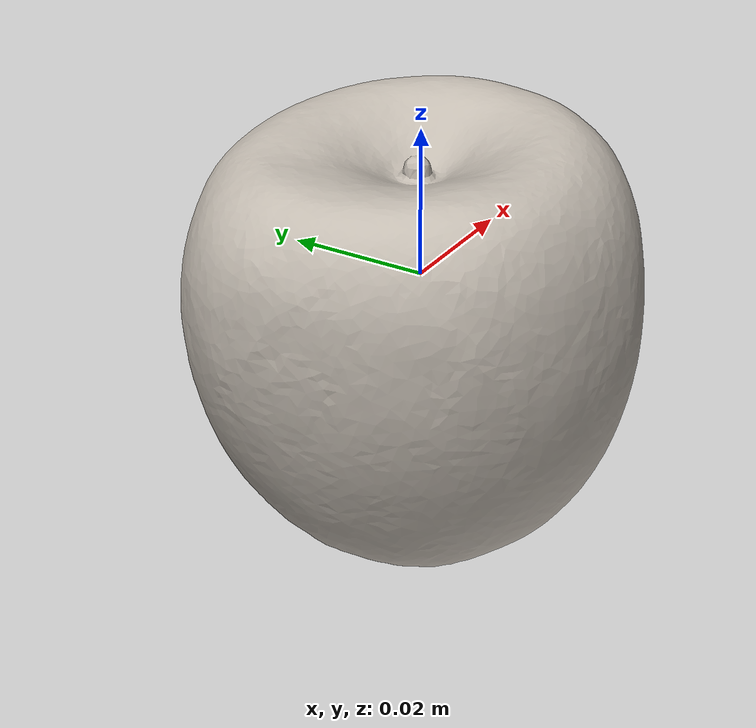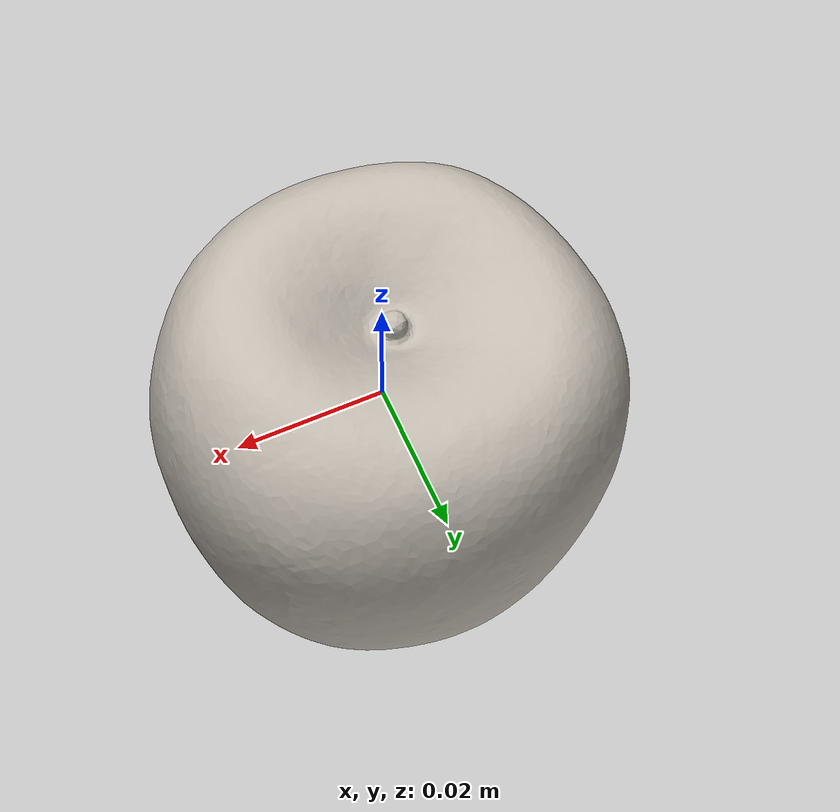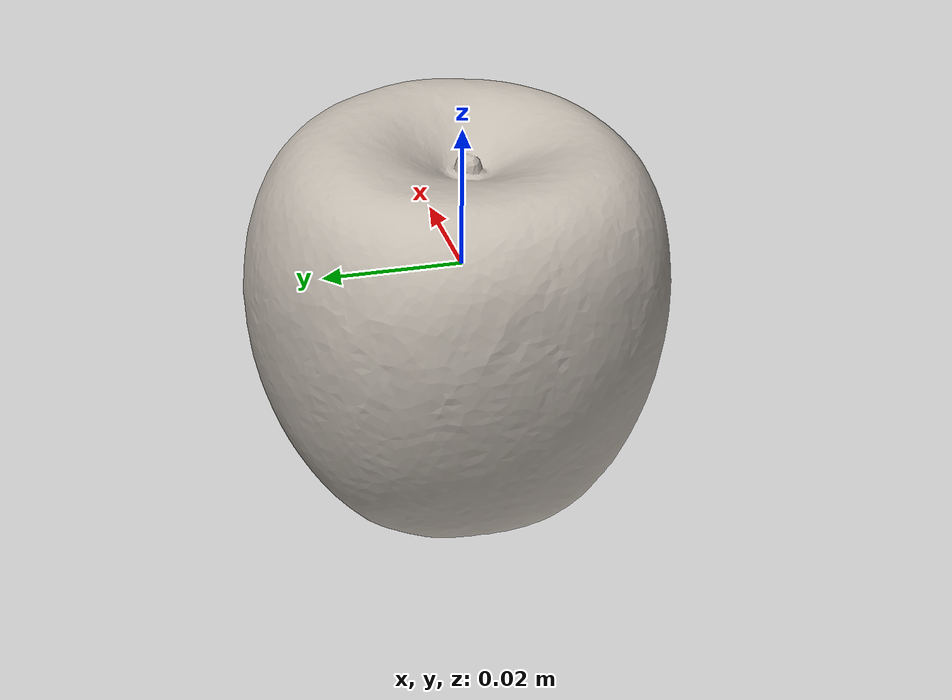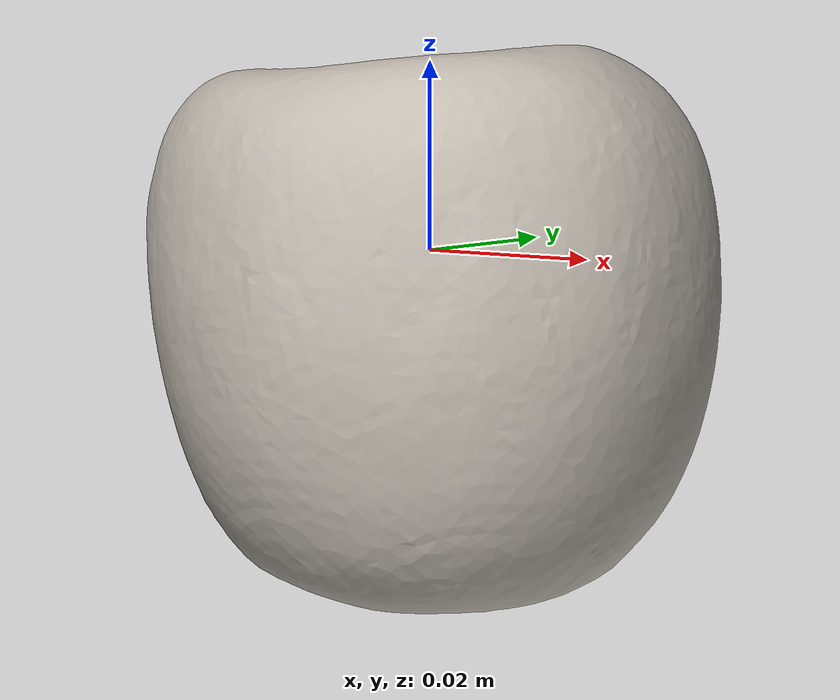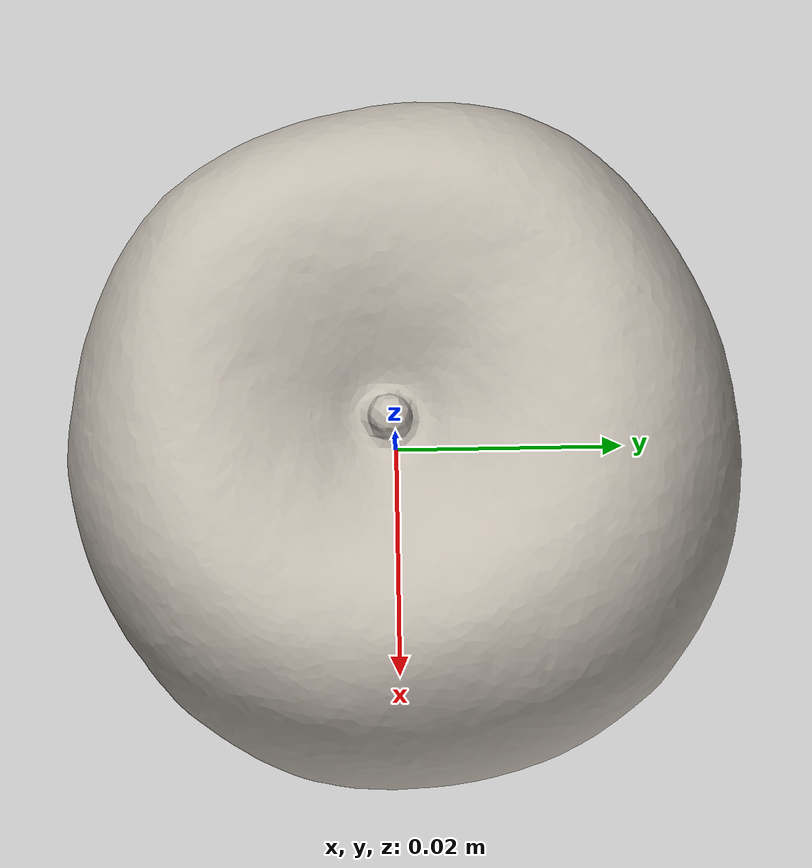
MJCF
<mujoco model="bread">
  <asset>
    <mesh file="nontextured.stl" name="obj_mesh" scale="0.8 0.8 0.8"/>
    <texture file="../../../../../textures/bread.png" type="2d" name="tex-bread" />
    <material name="bread" reflectance="0.7" texrepeat="15 15" texture="tex-bread" texuniform="true"/>
  </asset>
  <worldbody>
    <body>
      <body name="collision">
        <geom pos="-0.0008589999999999987 0.0037844999999999997 -0.0355515" mesh="obj_mesh" type="mesh" solimp="0.998 0.998 0.001" solref="0.001 1" density="50" friction="0.95 0.3 0.1"  material="bread" group="1" condim="4"/>
      </body>
      <body name="visual">
        <geom pos="-0.0008589999999999987 0.0037844999999999997 -0.0355515" mesh="obj_mesh" type="mesh" material="bread"  conaffinity="0" contype="0"  group="0" mass="0.0001"/>
        <geom pos="-0.0008589999999999987 0.0037844999999999997 -0.0355515" mesh="obj_mesh" type="mesh" material="bread"  conaffinity="0" contype="0"  group="1" mass="0.0001"/>
      </body>
      <site rgba="0 0 0 0" size="0.005" pos="0 0 -0.035944500000000004" name="bottom_site"/>
      <site rgba="0 0 0 0" size="0.005" pos="0 0 0.035944500000000004" name="top_site"/>
      <site rgba="0 0 0 0" size="0.005" pos="0.037724 0.0374355 0.035944500000000004" name="horizontal_radius_site"/>
    </body>
  </worldbody>
</mujoco>
